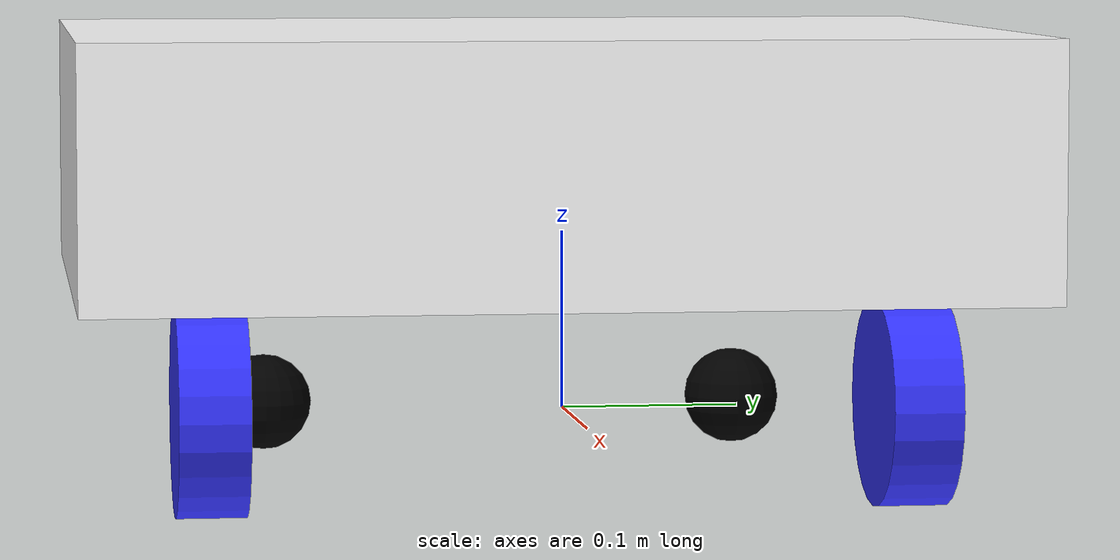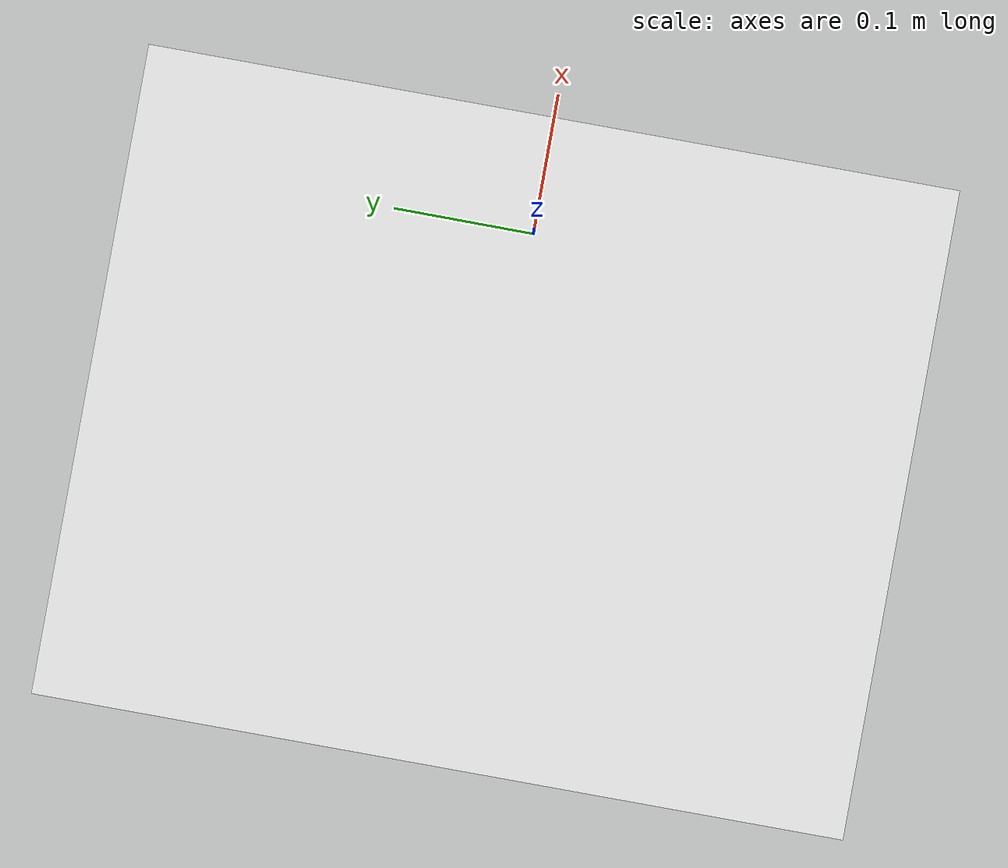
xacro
<?xml version="1.0"?>
<robot xmlns:xacro="http://www.ros.org/wiki/xacro" >

    <xacro:include filename="inertial_macros.xacro"/>

    <material name="white">
        <color rgba="1 1 1 1" />
    </material>
    <material name="orange">
        <color rgba="1 0.3 0.1 1"/>
    </material>
    <material name="blue">
        <color rgba="0.2 0.2 1 1"/>
    </material>
    <material name="black">
        <color rgba="0 0 0 1"/>
    </material>
    <material name="red">
        <color rgba="1 0 0 1"/>
    </material>

    <!-- BASE_FOOTPRINT -->
    <joint name="base_footprint_joint" type="fixed">
        <parent link="base_link"/>
        <child link="base_footprint"/>
        <origin xyz="0 0 0" rpy="0 0 0"/>
    </joint>
    <link name="base_footprint">
    </link>

    <!-- BASE LINK (Center of front active wheels axle) -->
    <link name="base_link">
    </link>

    <!-- CHASSIS LINK (Shifted back and lifted above the wheels to prevent collision) -->
    <joint name="chassis_joint" type="fixed">
        <parent link="base_link"/>
        <child link="chassis"/>
        <origin xyz="-0.15 0 0.06"/>
    </joint>
    <link name="chassis">
        <visual>
            <origin xyz="0 0 0.075"/>
            <geometry>
                <box size="0.44 0.55 0.15"/>
            </geometry>
            <material name="white"/>
        </visual>
        <collision>
            <origin xyz="0 0 0.075"/>
            <geometry>
                <box size="0.44 0.55 0.15"/>
            </geometry>
        </collision>
        <xacro:inertial_box mass="10" x="0.44" y="0.55" z="0.15">
            <origin xyz="0 0 0.075" rpy="0 0 0"/>
        </xacro:inertial_box>
    </link>
    <gazebo reference="chassis">
        <material>Gazebo/White</material>
    </gazebo>

    <!-- LEFT FRONT WHEEL LINK -->
    <joint name="left_wheel_joint" type="continuous">
        <parent link="base_link"/>
        <child link="left_wheel"/>
        <origin xyz="0 0.2 0" rpy="-${pi/2} 0 0" />
        <axis xyz="0 0 1"/>
    </joint>
    <link name="left_wheel">
        <visual>
            <geometry>
                <cylinder radius="0.06" length="0.04"/>
            </geometry>
            <material name="blue"/>
        </visual>
        <collision>
            <geometry>
                <cylinder radius="0.06" length="0.04"/>
            </geometry>
        </collision>
        <xacro:inertial_cylinder mass="0.5" length="0.04" radius="0.06">
            <origin xyz="0 0 0" rpy="0 0 0"/>
        </xacro:inertial_cylinder>
    </link>
    <gazebo reference="left_wheel">
        <material>Gazebo/Blue</material>
    </gazebo>

    <!-- RIGHT FRONT WHEEL LINK -->
    <joint name="right_wheel_joint" type="continuous">
        <parent link="base_link"/>
        <child link="right_wheel"/>
        <origin xyz="0 -0.2 0" rpy="${pi/2} 0 0" />
        <axis xyz="0 0 -1"/>
    </joint>
    <link name="right_wheel">
        <visual>
            <geometry>
                <cylinder radius="0.06" length="0.04"/>
            </geometry>
            <material name="blue"/>
        </visual>
        <collision>
            <geometry>
                <cylinder radius="0.06" length="0.04"/>
            </geometry>
        </collision>
        <xacro:inertial_cylinder mass="0.5" length="0.04" radius="0.06">
            <origin xyz="0 0 0" rpy="0 0 0"/>
        </xacro:inertial_cylinder>
    </link>
    <gazebo reference="right_wheel">
        <material>Gazebo/Blue</material>
    </gazebo>

    <!-- LEFT REAR CASTER WHEEL LINK -->
    <joint name="left_caster_wheel_joint" type="fixed">
        <parent link="chassis"/>
        <child link="left_caster_wheel"/>
        <origin xyz="-0.15 0.15 -0.09"/>
    </joint>
    <link name="left_caster_wheel">
        <visual>
            <geometry>
                <sphere radius="0.03"/>
            </geometry>
            <material name="black"/>
        </visual>
        <collision>
            <geometry>
                <sphere radius="0.03"/>
            </geometry>
        </collision>
        <xacro:inertial_sphere mass="0.1" radius="0.03">
            <origin xyz="0 0 0" rpy="0 0 0"/>
        </xacro:inertial_sphere>
    </link>
    <gazebo reference="left_caster_wheel">
        <material>Gazebo/Black</material>
        <mu1 value="0.001"/>
        <mu2 value="0.001"/>
    </gazebo>

    <!-- RIGHT REAR CASTER WHEEL LINK -->
    <joint name="right_caster_wheel_joint" type="fixed">
        <parent link="chassis"/>
        <child link="right_caster_wheel"/>
        <origin xyz="-0.15 -0.15 -0.09"/>
    </joint>
    <link name="right_caster_wheel">
        <visual>
            <geometry>
                <sphere radius="0.03"/>
            </geometry>
            <material name="black"/>
        </visual>
        <collision>
            <geometry>
                <sphere radius="0.03"/>
            </geometry>
        </collision>
        <xacro:inertial_sphere mass="0.1" radius="0.03">
            <origin xyz="0 0 0" rpy="0 0 0"/>
        </xacro:inertial_sphere>
    </link>
    <gazebo reference="right_caster_wheel">
        <material>Gazebo/Black</material>
        <mu1 value="0.001"/>
        <mu2 value="0.001"/>
    </gazebo>

</robot>
